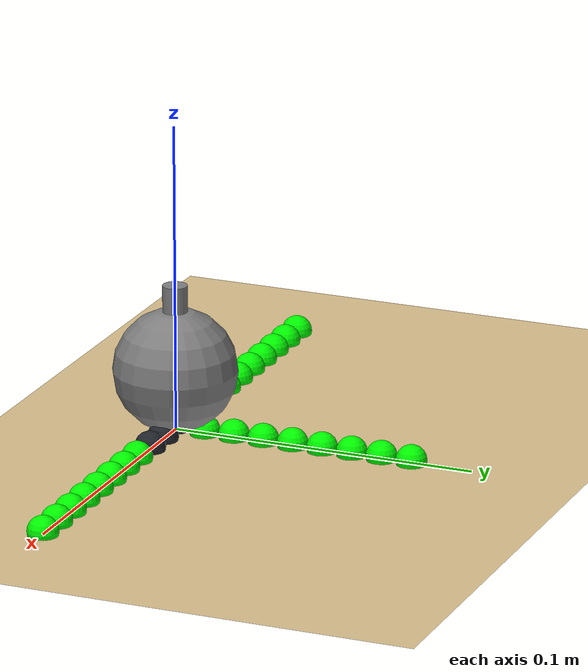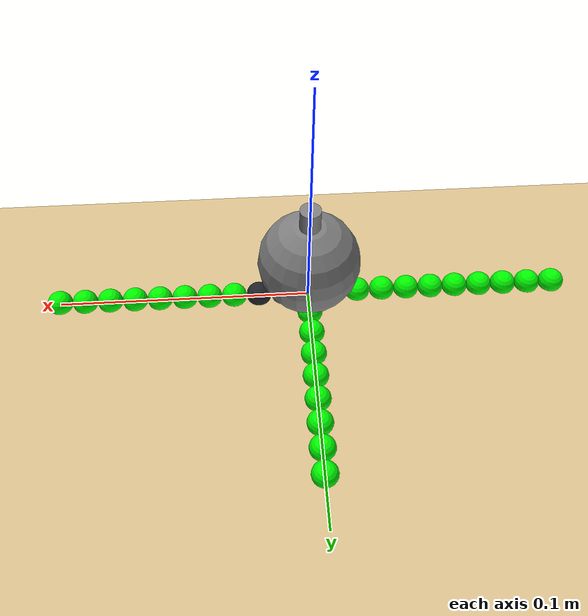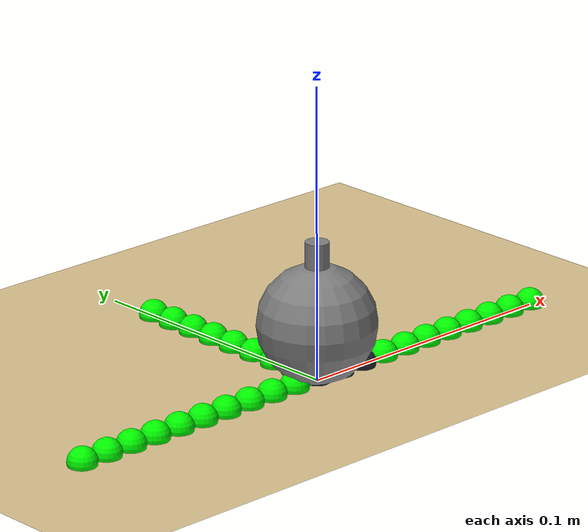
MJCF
tippe_top = """
<mujoco model="tippe top">
  <option integrator="RK4"/>

  <asset>
  <texture name="sand_texture" type="2d" builtin="checker" rgb1=".9 .8 .6" rgb2=".8 .7 .5" width="256" height="256"/>
  <material name="sand_material" texture="sand_texture" texrepeat="4 4" reflectance="0.2"/>
  </asset>

  <worldbody>
    <geom size=".2 .2 .01" type="plane" material="sand_material" friction="3 0.3 0.3"/>

    <geom name="green_sphere1" pos="0 0.0 0.002" size=".005" rgba="0.13 0.145 0.168 1"/>
    <geom name="green_sphere2" pos="0.01 0.0 0.001" size=".005" rgba="0.13 0.145 0.168 1"/>
    <geom name="green_sphere3" pos="0.02 0.0 0.001" size=".005" rgba="0.13 0.145 0.168 1"/>
    <geom name="green_sphere4" pos="0.03 0.0 0.001" size=".005" rgba="0 1 0 1"/>
    <geom name="green_sphere5" pos="0.04 0.0 0.001" size=".005" rgba="0 1 0 1"/>
    <geom name="green_sphere6" pos="0.05 0.0 0.001" size=".005" rgba="0 1 0 1"/>
    <geom name="green_sphere7" pos="0.06 0.0 0.001" size=".005" rgba="0 1 0 1"/>
    <geom name="green_sphere8" pos="0.07 0.0 0.001" size=".005" rgba="0 1 0 1"/>
    <geom name="green_sphere9" pos="0.08 0.0 0.001" size=".005" rgba="0 1 0 1"/>
    <geom name="green_sphere10" pos="0.09 0.0 0.001" size=".005" rgba="0 1 0 1"/>
    <geom name="green_sphere11" pos="0.1 0.0 0.001" size=".005" rgba="0 1 0 1"/>
    <geom name="green_sphere12" pos="-0.01 0.0 0.001" size=".005" rgba="0 1 0 1"/>
    <geom name="green_sphere13" pos="-0.02 0.0 0.001" size=".005" rgba="0 1 0 1"/>
    <geom name="green_sphere14" pos="-0.03 0.0 0.001" size=".005" rgba="0 1 0 1"/>
    <geom name="green_sphere15" pos="-0.04 0.0 0.001" size=".005" rgba="0 1 0 1"/>
    <geom name="green_sphere16" pos="-0.05 0.0 0.001" size=".005" rgba="0 1 0 1"/>
    <geom name="green_sphere17" pos="-0.06 0.0 0.001" size=".005" rgba="0 1 0 1"/>
    <geom name="green_sphere18" pos="-0.07 0.0 0.001" size=".005" rgba="0 1 0 1"/>
    <geom name="green_sphere19" pos="-0.08 0.0 0.001" size=".005" rgba="0 1 0 1"/>
    <geom name="green_sphere20" pos="-0.09 0.0 0.001" size=".005" rgba="0 1 0 1"/>
    <geom name="green_sphere21" pos="-0.1 0.0 0.001" size=".005" rgba="0 1 0 1"/>
    <geom name="green_sphere22" pos="0.0 0.01 0.001" size=".005" rgba="0 1 0 1"/>
    <geom name="green_sphere23" pos="0.0 0.02 0.001" size=".005" rgba="0 1 0 1"/>
    <geom name="green_sphere24" pos="0.0 0.03 0.001" size=".005" rgba="0 1 0 1"/>
    <geom name="green_sphere25" pos="0.0 0.04 0.001" size=".005" rgba="0 1 0 1"/>
    <geom name="green_sphere26" pos="0.0 0.05 0.001" size=".005" rgba="0 1 0 1"/>
    <geom name="green_sphere27" pos="0.0 0.06 0.001" size=".005" rgba="0 1 0 1"/>
    <geom name="green_sphere28" pos="0.0 0.07 0.001" size=".005" rgba="0 1 0 1"/>
    <geom name="green_sphere29" pos="0.0 0.08 0.001" size=".005" rgba="0 1 0 1"/>

    <light pos="0 0 .6"/>
    <camera name="closeup" pos="0 -.2 .07" xyaxes="1 0 0 0 1 2"/>
    <body name="top" pos="0 0 .02">
      <freejoint/>
      <geom name="ball" type="sphere" size=".02" />
      <geom name="stem" type="cylinder" pos="0 0 .02" size="0.004 .008"/>
      <geom name="ballast" type="box" size=".023 .023 0.005"  pos="0 0 -.015"
       contype="0" conaffinity="0" group="3"/>
    </body>
  </worldbody>

  <keyframe>
    <key name="spinning" qpos="0 0 0.02 1 0 0 0" qvel="0 0 0 0 1 200" />
  </keyframe>
</mujoco>
"""
